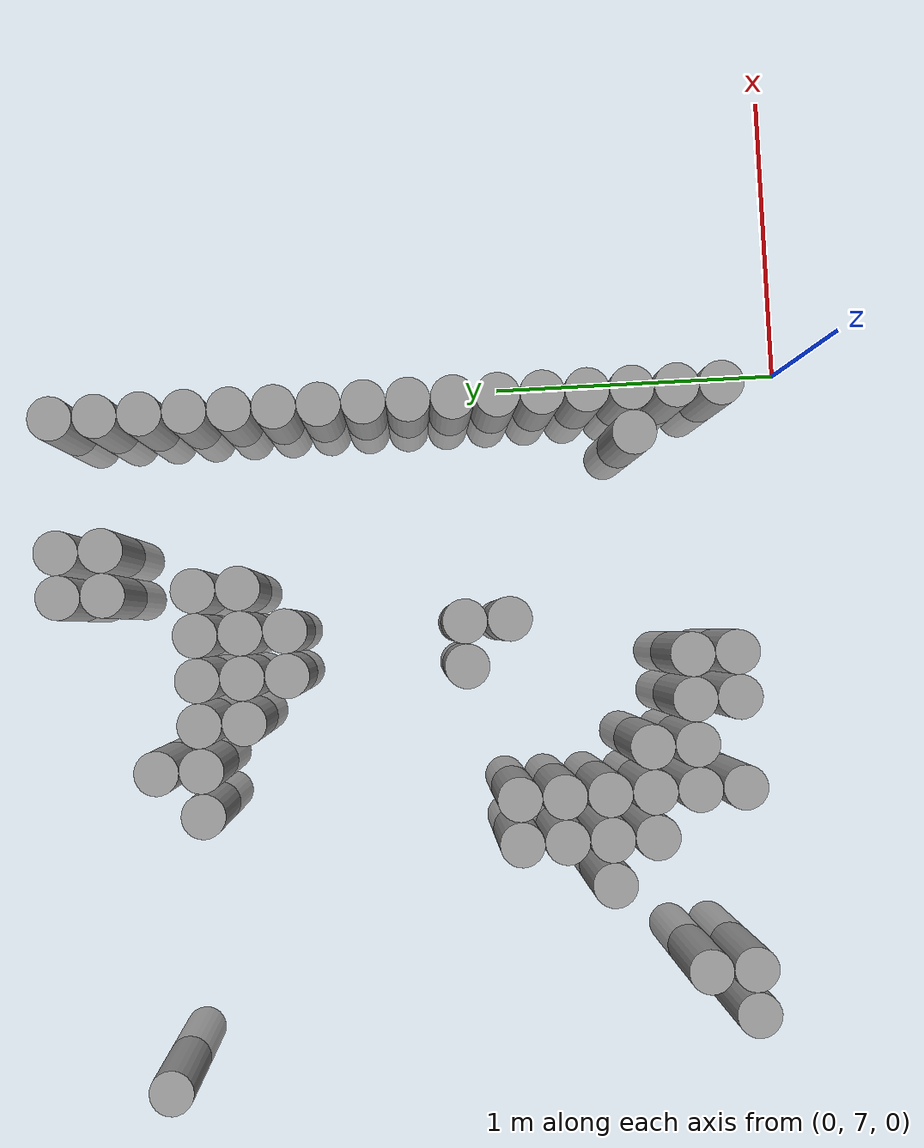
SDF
<sdf version="1.6">
 <world name="default">
  <model name="ground_plane">
   <static>1</static>
   <static>1</static>
   <link name="link">
    <collision name="collision">
     <geometry><plane><normal>0 0 1</normal><size>100 100</size></plane></geometry>
     <surface><friction><ode><mu>100</mu><mu2>50</mu2></ode></friction></surface>
    </collision>
    <visual name="visual">
     <cast_shadows>0</cast_shadows>
     <geometry><plane><normal>0 0 1</normal><size>100 100</size></plane></geometry>
     <material>
      <script><uri>file://media/materials/scripts/gazebo.material</uri><name>Gazebo/Grey</name></script>
     </material>
    </visual>
   </link>
  </model>
  <model name="unit_cylinder_172">
   <static>1</static>
   <pose>-2.325000 9.225000 0.000000 0.000000 0.000000 0.000000</pose>
   <link name="link">
    <inertial>
     <mass>1</mass>
     <inertia><ixx>0.145833</ixx><ixy>0</ixy><ixz>0</ixz><iyy>0.145833</iyy><iyz>0</iyz><izz>0.125</izz></inertia>
    </inertial>
    <collision name="collision">
     <geometry><cylinder><radius>0.075000</radius><length>1</length></cylinder></geometry>
    </collision>
    <visual name="visual">
     <geometry><cylinder><radius>0.075000</radius><length>1</length></cylinder></geometry>
     <material>
      <script><name>Gazebo/Grey</name><uri>file://media/materials/scripts/gazebo.material</uri></script>
     </material>
    </visual>
   </link>
  </model>
  <model name="unit_cylinder_177">
   <static>1</static>
   <pose>-2.175000 7.275000 0.000000 0.000000 0.000000 0.000000</pose>
   <link name="link">
    <inertial>
     <mass>1</mass>
     <inertia><ixx>0.145833</ixx><ixy>0</ixy><ixz>0</ixz><iyy>0.145833</iyy><iyz>0</iyz><izz>0.125</izz></inertia>
    </inertial>
    <collision name="collision">
     <geometry><cylinder><radius>0.075000</radius><length>1</length></cylinder></geometry>
    </collision>
    <visual name="visual">
     <geometry><cylinder><radius>0.075000</radius><length>1</length></cylinder></geometry>
     <material>
      <script><name>Gazebo/Grey</name><uri>file://media/materials/scripts/gazebo.material</uri></script>
     </material>
    </visual>
   </link>
  </model>
  <model name="unit_cylinder_181">
   <static>1</static>
   <pose>-2.025000 7.275000 0.000000 0.000000 0.000000 0.000000</pose>
   <link name="link">
    <inertial>
     <mass>1</mass>
     <inertia><ixx>0.145833</ixx><ixy>0</ixy><ixz>0</ixz><iyy>0.145833</iyy><iyz>0</iyz><izz>0.125</izz></inertia>
    </inertial>
    <collision name="collision">
     <geometry><cylinder><radius>0.075000</radius><length>1</length></cylinder></geometry>
    </collision>
    <visual name="visual">
     <geometry><cylinder><radius>0.075000</radius><length>1</length></cylinder></geometry>
     <material>
      <script><name>Gazebo/Grey</name><uri>file://media/materials/scripts/gazebo.material</uri></script>
     </material>
    </visual>
   </link>
  </model>
  <model name="unit_cylinder_182">
   <static>1</static>
   <pose>-2.025000 7.425000 0.000000 0.000000 0.000000 0.000000</pose>
   <link name="link">
    <inertial>
     <mass>1</mass>
     <inertia><ixx>0.145833</ixx><ixy>0</ixy><ixz>0</ixz><iyy>0.145833</iyy><iyz>0</iyz><izz>0.125</izz></inertia>
    </inertial>
    <collision name="collision">
     <geometry><cylinder><radius>0.075000</radius><length>1</length></cylinder></geometry>
    </collision>
    <visual name="visual">
     <geometry><cylinder><radius>0.075000</radius><length>1</length></cylinder></geometry>
     <material>
      <script><name>Gazebo/Grey</name><uri>file://media/materials/scripts/gazebo.material</uri></script>
     </material>
    </visual>
   </link>
  </model>
  <model name="unit_cylinder_190">
   <static>1</static>
   <pose>-1.725000 7.725000 0.000000 0.000000 0.000000 0.000000</pose>
   <link name="link">
    <inertial>
     <mass>1</mass>
     <inertia><ixx>0.145833</ixx><ixy>0</ixy><ixz>0</ixz><iyy>0.145833</iyy><iyz>0</iyz><izz>0.125</izz></inertia>
    </inertial>
    <collision name="collision">
     <geometry><cylinder><radius>0.075000</radius><length>1</length></cylinder></geometry>
    </collision>
    <visual name="visual">
     <geometry><cylinder><radius>0.075000</radius><length>1</length></cylinder></geometry>
     <material>
      <script><name>Gazebo/Grey</name><uri>file://media/materials/scripts/gazebo.material</uri></script>
     </material>
    </visual>
   </link>
  </model>
  <model name="unit_cylinder_195">
   <static>1</static>
   <pose>-1.575000 7.575000 0.000000 0.000000 0.000000 0.000000</pose>
   <link name="link">
    <inertial>
     <mass>1</mass>
     <inertia><ixx>0.145833</ixx><ixy>0</ixy><ixz>0</ixz><iyy>0.145833</iyy><iyz>0</iyz><izz>0.125</izz></inertia>
    </inertial>
    <collision name="collision">
     <geometry><cylinder><radius>0.075000</radius><length>1</length></cylinder></geometry>
    </collision>
    <visual name="visual">
     <geometry><cylinder><radius>0.075000</radius><length>1</length></cylinder></geometry>
     <material>
      <script><name>Gazebo/Grey</name><uri>file://media/materials/scripts/gazebo.material</uri></script>
     </material>
    </visual>
   </link>
  </model>
  <model name="unit_cylinder_196">
   <static>1</static>
   <pose>-1.575000 7.725000 0.000000 0.000000 0.000000 0.000000</pose>
   <link name="link">
    <inertial>
     <mass>1</mass>
     <inertia><ixx>0.145833</ixx><ixy>0</ixy><ixz>0</ixz><iyy>0.145833</iyy><iyz>0</iyz><izz>0.125</izz></inertia>
    </inertial>
    <collision name="collision">
     <geometry><cylinder><radius>0.075000</radius><length>1</length></cylinder></geometry>
    </collision>
    <visual name="visual">
     <geometry><cylinder><radius>0.075000</radius><length>1</length></cylinder></geometry>
     <material>
      <script><name>Gazebo/Grey</name><uri>file://media/materials/scripts/gazebo.material</uri></script>
     </material>
    </visual>
   </link>
  </model>
  <model name="unit_cylinder_197">
   <static>1</static>
   <pose>-1.575000 7.875000 0.000000 0.000000 0.000000 0.000000</pose>
   <link name="link">
    <inertial>
     <mass>1</mass>
     <inertia><ixx>0.145833</ixx><ixy>0</ixy><ixz>0</ixz><iyy>0.145833</iyy><iyz>0</iyz><izz>0.125</izz></inertia>
    </inertial>
    <collision name="collision">
     <geometry><cylinder><radius>0.075000</radius><length>1</length></cylinder></geometry>
    </collision>
    <visual name="visual">
     <geometry><cylinder><radius>0.075000</radius><length>1</length></cylinder></geometry>
     <material>
      <script><name>Gazebo/Grey</name><uri>file://media/materials/scripts/gazebo.material</uri></script>
     </material>
    </visual>
   </link>
  </model>
  <model name="unit_cylinder_198">
   <static>1</static>
   <pose>-1.575000 8.025000 0.000000 0.000000 0.000000 0.000000</pose>
   <link name="link">
    <inertial>
     <mass>1</mass>
     <inertia><ixx>0.145833</ixx><ixy>0</ixy><ixz>0</ixz><iyy>0.145833</iyy><iyz>0</iyz><izz>0.125</izz></inertia>
    </inertial>
    <collision name="collision">
     <geometry><cylinder><radius>0.075000</radius><length>1</length></cylinder></geometry>
    </collision>
    <visual name="visual">
     <geometry><cylinder><radius>0.075000</radius><length>1</length></cylinder></geometry>
     <material>
      <script><name>Gazebo/Grey</name><uri>file://media/materials/scripts/gazebo.material</uri></script>
     </material>
    </visual>
   </link>
  </model>
  <model name="unit_cylinder_205">
   <static>1</static>
   <pose>-1.425000 7.275000 0.000000 0.000000 0.000000 0.000000</pose>
   <link name="link">
    <inertial>
     <mass>1</mass>
     <inertia><ixx>0.145833</ixx><ixy>0</ixy><ixz>0</ixz><iyy>0.145833</iyy><iyz>0</iyz><izz>0.125</izz></inertia>
    </inertial>
    <collision name="collision">
     <geometry><cylinder><radius>0.075000</radius><length>1</length></cylinder></geometry>
    </collision>
    <visual name="visual">
     <geometry><cylinder><radius>0.075000</radius><length>1</length></cylinder></geometry>
     <material>
      <script><name>Gazebo/Grey</name><uri>file://media/materials/scripts/gazebo.material</uri></script>
     </material>
    </visual>
   </link>
  </model>
  <model name="unit_cylinder_206">
   <static>1</static>
   <pose>-1.425000 7.425000 0.000000 0.000000 0.000000 0.000000</pose>
   <link name="link">
    <inertial>
     <mass>1</mass>
     <inertia><ixx>0.145833</ixx><ixy>0</ixy><ixz>0</ixz><iyy>0.145833</iyy><iyz>0</iyz><izz>0.125</izz></inertia>
    </inertial>
    <collision name="collision">
     <geometry><cylinder><radius>0.075000</radius><length>1</length></cylinder></geometry>
    </collision>
    <visual name="visual">
     <geometry><cylinder><radius>0.075000</radius><length>1</length></cylinder></geometry>
     <material>
      <script><name>Gazebo/Grey</name><uri>file://media/materials/scripts/gazebo.material</uri></script>
     </material>
    </visual>
   </link>
  </model>
  <model name="unit_cylinder_207">
   <static>1</static>
   <pose>-1.425000 7.575000 0.000000 0.000000 0.000000 0.000000</pose>
   <link name="link">
    <inertial>
     <mass>1</mass>
     <inertia><ixx>0.145833</ixx><ixy>0</ixy><ixz>0</ixz><iyy>0.145833</iyy><iyz>0</iyz><izz>0.125</izz></inertia>
    </inertial>
    <collision name="collision">
     <geometry><cylinder><radius>0.075000</radius><length>1</length></cylinder></geometry>
    </collision>
    <visual name="visual">
     <geometry><cylinder><radius>0.075000</radius><length>1</length></cylinder></geometry>
     <material>
      <script><name>Gazebo/Grey</name><uri>file://media/materials/scripts/gazebo.material</uri></script>
     </material>
    </visual>
   </link>
  </model>
  <model name="unit_cylinder_208">
   <static>1</static>
   <pose>-1.425000 7.725000 0.000000 0.000000 0.000000 0.000000</pose>
   <link name="link">
    <inertial>
     <mass>1</mass>
     <inertia><ixx>0.145833</ixx><ixy>0</ixy><ixz>0</ixz><iyy>0.145833</iyy><iyz>0</iyz><izz>0.125</izz></inertia>
    </inertial>
    <collision name="collision">
     <geometry><cylinder><radius>0.075000</radius><length>1</length></cylinder></geometry>
    </collision>
    <visual name="visual">
     <geometry><cylinder><radius>0.075000</radius><length>1</length></cylinder></geometry>
     <material>
      <script><name>Gazebo/Grey</name><uri>file://media/materials/scripts/gazebo.material</uri></script>
     </material>
    </visual>
   </link>
  </model>
  <model name="unit_cylinder_209">
   <static>1</static>
   <pose>-1.425000 7.875000 0.000000 0.000000 0.000000 0.000000</pose>
   <link name="link">
    <inertial>
     <mass>1</mass>
     <inertia><ixx>0.145833</ixx><ixy>0</ixy><ixz>0</ixz><iyy>0.145833</iyy><iyz>0</iyz><izz>0.125</izz></inertia>
    </inertial>
    <collision name="collision">
     <geometry><cylinder><radius>0.075000</radius><length>1</length></cylinder></geometry>
    </collision>
    <visual name="visual">
     <geometry><cylinder><radius>0.075000</radius><length>1</length></cylinder></geometry>
     <material>
      <script><name>Gazebo/Grey</name><uri>file://media/materials/scripts/gazebo.material</uri></script>
     </material>
    </visual>
   </link>
  </model>
  <model name="unit_cylinder_210">
   <static>1</static>
   <pose>-1.425000 8.025000 0.000000 0.000000 0.000000 0.000000</pose>
   <link name="link">
    <inertial>
     <mass>1</mass>
     <inertia><ixx>0.145833</ixx><ixy>0</ixy><ixz>0</ixz><iyy>0.145833</iyy><iyz>0</iyz><izz>0.125</izz></inertia>
    </inertial>
    <collision name="collision">
     <geometry><cylinder><radius>0.075000</radius><length>1</length></cylinder></geometry>
    </collision>
    <visual name="visual">
     <geometry><cylinder><radius>0.075000</radius><length>1</length></cylinder></geometry>
     <material>
      <script><name>Gazebo/Grey</name><uri>file://media/materials/scripts/gazebo.material</uri></script>
     </material>
    </visual>
   </link>
  </model>
  <model name="unit_cylinder_211">
   <static>1</static>
   <pose>-1.425000 9.075000 0.000000 0.000000 0.000000 0.000000</pose>
   <link name="link">
    <inertial>
     <mass>1</mass>
     <inertia><ixx>0.145833</ixx><ixy>0</ixy><ixz>0</ixz><iyy>0.145833</iyy><iyz>0</iyz><izz>0.125</izz></inertia>
    </inertial>
    <collision name="collision">
     <geometry><cylinder><radius>0.075000</radius><length>1</length></cylinder></geometry>
    </collision>
    <visual name="visual">
     <geometry><cylinder><radius>0.075000</radius><length>1</length></cylinder></geometry>
     <material>
      <script><name>Gazebo/Grey</name><uri>file://media/materials/scripts/gazebo.material</uri></script>
     </material>
    </visual>
   </link>
  </model>
  <model name="unit_cylinder_215">
   <static>1</static>
   <pose>-1.275000 7.425000 0.000000 0.000000 0.000000 0.000000</pose>
   <link name="link">
    <inertial>
     <mass>1</mass>
     <inertia><ixx>0.145833</ixx><ixy>0</ixy><ixz>0</ixz><iyy>0.145833</iyy><iyz>0</iyz><izz>0.125</izz></inertia>
    </inertial>
    <collision name="collision">
     <geometry><cylinder><radius>0.075000</radius><length>1</length></cylinder></geometry>
    </collision>
    <visual name="visual">
     <geometry><cylinder><radius>0.075000</radius><length>1</length></cylinder></geometry>
     <material>
      <script><name>Gazebo/Grey</name><uri>file://media/materials/scripts/gazebo.material</uri></script>
     </material>
    </visual>
   </link>
  </model>
  <model name="unit_cylinder_216">
   <static>1</static>
   <pose>-1.275000 7.575000 0.000000 0.000000 0.000000 0.000000</pose>
   <link name="link">
    <inertial>
     <mass>1</mass>
     <inertia><ixx>0.145833</ixx><ixy>0</ixy><ixz>0</ixz><iyy>0.145833</iyy><iyz>0</iyz><izz>0.125</izz></inertia>
    </inertial>
    <collision name="collision">
     <geometry><cylinder><radius>0.075000</radius><length>1</length></cylinder></geometry>
    </collision>
    <visual name="visual">
     <geometry><cylinder><radius>0.075000</radius><length>1</length></cylinder></geometry>
     <material>
      <script><name>Gazebo/Grey</name><uri>file://media/materials/scripts/gazebo.material</uri></script>
     </material>
    </visual>
   </link>
  </model>
  <model name="unit_cylinder_217">
   <static>1</static>
   <pose>-1.275000 9.075000 0.000000 0.000000 0.000000 0.000000</pose>
   <link name="link">
    <inertial>
     <mass>1</mass>
     <inertia><ixx>0.145833</ixx><ixy>0</ixy><ixz>0</ixz><iyy>0.145833</iyy><iyz>0</iyz><izz>0.125</izz></inertia>
    </inertial>
    <collision name="collision">
     <geometry><cylinder><radius>0.075000</radius><length>1</length></cylinder></geometry>
    </collision>
    <visual name="visual">
     <geometry><cylinder><radius>0.075000</radius><length>1</length></cylinder></geometry>
     <material>
      <script><name>Gazebo/Grey</name><uri>file://media/materials/scripts/gazebo.material</uri></script>
     </material>
    </visual>
   </link>
  </model>
  <model name="unit_cylinder_218">
   <static>1</static>
   <pose>-1.275000 9.225000 0.000000 0.000000 0.000000 0.000000</pose>
   <link name="link">
    <inertial>
     <mass>1</mass>
     <inertia><ixx>0.145833</ixx><ixy>0</ixy><ixz>0</ixz><iyy>0.145833</iyy><iyz>0</iyz><izz>0.125</izz></inertia>
    </inertial>
    <collision name="collision">
     <geometry><cylinder><radius>0.075000</radius><length>1</length></cylinder></geometry>
    </collision>
    <visual name="visual">
     <geometry><cylinder><radius>0.075000</radius><length>1</length></cylinder></geometry>
     <material>
      <script><name>Gazebo/Grey</name><uri>file://media/materials/scripts/gazebo.material</uri></script>
     </material>
    </visual>
   </link>
  </model>
  <model name="unit_cylinder_224">
   <static>1</static>
   <pose>-1.125000 7.275000 0.000000 0.000000 0.000000 0.000000</pose>
   <link name="link">
    <inertial>
     <mass>1</mass>
     <inertia><ixx>0.145833</ixx><ixy>0</ixy><ixz>0</ixz><iyy>0.145833</iyy><iyz>0</iyz><izz>0.125</izz></inertia>
    </inertial>
    <collision name="collision">
     <geometry><cylinder><radius>0.075000</radius><length>1</length></cylinder></geometry>
    </collision>
    <visual name="visual">
     <geometry><cylinder><radius>0.075000</radius><length>1</length></cylinder></geometry>
     <material>
      <script><name>Gazebo/Grey</name><uri>file://media/materials/scripts/gazebo.material</uri></script>
     </material>
    </visual>
   </link>
  </model>
  <model name="unit_cylinder_225">
   <static>1</static>
   <pose>-1.125000 7.425000 0.000000 0.000000 0.000000 0.000000</pose>
   <link name="link">
    <inertial>
     <mass>1</mass>
     <inertia><ixx>0.145833</ixx><ixy>0</ixy><ixz>0</ixz><iyy>0.145833</iyy><iyz>0</iyz><izz>0.125</izz></inertia>
    </inertial>
    <collision name="collision">
     <geometry><cylinder><radius>0.075000</radius><length>1</length></cylinder></geometry>
    </collision>
    <visual name="visual">
     <geometry><cylinder><radius>0.075000</radius><length>1</length></cylinder></geometry>
     <material>
      <script><name>Gazebo/Grey</name><uri>file://media/materials/scripts/gazebo.material</uri></script>
     </material>
    </visual>
   </link>
  </model>
  <model name="unit_cylinder_226">
   <static>1</static>
   <pose>-1.125000 8.925000 0.000000 0.000000 0.000000 0.000000</pose>
   <link name="link">
    <inertial>
     <mass>1</mass>
     <inertia><ixx>0.145833</ixx><ixy>0</ixy><ixz>0</ixz><iyy>0.145833</iyy><iyz>0</iyz><izz>0.125</izz></inertia>
    </inertial>
    <collision name="collision">
     <geometry><cylinder><radius>0.075000</radius><length>1</length></cylinder></geometry>
    </collision>
    <visual name="visual">
     <geometry><cylinder><radius>0.075000</radius><length>1</length></cylinder></geometry>
     <material>
      <script><name>Gazebo/Grey</name><uri>file://media/materials/scripts/gazebo.material</uri></script>
     </material>
    </visual>
   </link>
  </model>
  <model name="unit_cylinder_227">
   <static>1</static>
   <pose>-1.125000 9.075000 0.000000 0.000000 0.000000 0.000000</pose>
   <link name="link">
    <inertial>
     <mass>1</mass>
     <inertia><ixx>0.145833</ixx><ixy>0</ixy><ixz>0</ixz><iyy>0.145833</iyy><iyz>0</iyz><izz>0.125</izz></inertia>
    </inertial>
    <collision name="collision">
     <geometry><cylinder><radius>0.075000</radius><length>1</length></cylinder></geometry>
    </collision>
    <visual name="visual">
     <geometry><cylinder><radius>0.075000</radius><length>1</length></cylinder></geometry>
     <material>
      <script><name>Gazebo/Grey</name><uri>file://media/materials/scripts/gazebo.material</uri></script>
     </material>
    </visual>
   </link>
  </model>
  <model name="unit_cylinder_231">
   <static>1</static>
   <pose>-0.975000 7.275000 0.000000 0.000000 0.000000 0.000000</pose>
   <link name="link">
    <inertial>
     <mass>1</mass>
     <inertia><ixx>0.145833</ixx><ixy>0</ixy><ixz>0</ixz><iyy>0.145833</iyy><iyz>0</iyz><izz>0.125</izz></inertia>
    </inertial>
    <collision name="collision">
     <geometry><cylinder><radius>0.075000</radius><length>1</length></cylinder></geometry>
    </collision>
    <visual name="visual">
     <geometry><cylinder><radius>0.075000</radius><length>1</length></cylinder></geometry>
     <material>
      <script><name>Gazebo/Grey</name><uri>file://media/materials/scripts/gazebo.material</uri></script>
     </material>
    </visual>
   </link>
  </model>
  <model name="unit_cylinder_232">
   <static>1</static>
   <pose>-0.975000 7.425000 0.000000 0.000000 0.000000 0.000000</pose>
   <link name="link">
    <inertial>
     <mass>1</mass>
     <inertia><ixx>0.145833</ixx><ixy>0</ixy><ixz>0</ixz><iyy>0.145833</iyy><iyz>0</iyz><izz>0.125</izz></inertia>
    </inertial>
    <collision name="collision">
     <geometry><cylinder><radius>0.075000</radius><length>1</length></cylinder></geometry>
    </collision>
    <visual name="visual">
     <geometry><cylinder><radius>0.075000</radius><length>1</length></cylinder></geometry>
     <material>
      <script><name>Gazebo/Grey</name><uri>file://media/materials/scripts/gazebo.material</uri></script>
     </material>
    </visual>
   </link>
  </model>
  <model name="unit_cylinder_233">
   <static>1</static>
   <pose>-0.975000 8.175000 0.000000 0.000000 0.000000 0.000000</pose>
   <link name="link">
    <inertial>
     <mass>1</mass>
     <inertia><ixx>0.145833</ixx><ixy>0</ixy><ixz>0</ixz><iyy>0.145833</iyy><iyz>0</iyz><izz>0.125</izz></inertia>
    </inertial>
    <collision name="collision">
     <geometry><cylinder><radius>0.075000</radius><length>1</length></cylinder></geometry>
    </collision>
    <visual name="visual">
     <geometry><cylinder><radius>0.075000</radius><length>1</length></cylinder></geometry>
     <material>
      <script><name>Gazebo/Grey</name><uri>file://media/materials/scripts/gazebo.material</uri></script>
     </material>
    </visual>
   </link>
  </model>
  <model name="unit_cylinder_234">
   <static>1</static>
   <pose>-0.975000 8.775000 0.000000 0.000000 0.000000 0.000000</pose>
   <link name="link">
    <inertial>
     <mass>1</mass>
     <inertia><ixx>0.145833</ixx><ixy>0</ixy><ixz>0</ixz><iyy>0.145833</iyy><iyz>0</iyz><izz>0.125</izz></inertia>
    </inertial>
    <collision name="collision">
     <geometry><cylinder><radius>0.075000</radius><length>1</length></cylinder></geometry>
    </collision>
    <visual name="visual">
     <geometry><cylinder><radius>0.075000</radius><length>1</length></cylinder></geometry>
     <material>
      <script><name>Gazebo/Grey</name><uri>file://media/materials/scripts/gazebo.material</uri></script>
     </material>
    </visual>
   </link>
  </model>
  <model name="unit_cylinder_235">
   <static>1</static>
   <pose>-0.975000 8.925000 0.000000 0.000000 0.000000 0.000000</pose>
   <link name="link">
    <inertial>
     <mass>1</mass>
     <inertia><ixx>0.145833</ixx><ixy>0</ixy><ixz>0</ixz><iyy>0.145833</iyy><iyz>0</iyz><izz>0.125</izz></inertia>
    </inertial>
    <collision name="collision">
     <geometry><cylinder><radius>0.075000</radius><length>1</length></cylinder></geometry>
    </collision>
    <visual name="visual">
     <geometry><cylinder><radius>0.075000</radius><length>1</length></cylinder></geometry>
     <material>
      <script><name>Gazebo/Grey</name><uri>file://media/materials/scripts/gazebo.material</uri></script>
     </material>
    </visual>
   </link>
  </model>
  <model name="unit_cylinder_236">
   <static>1</static>
   <pose>-0.975000 9.075000 0.000000 0.000000 0.000000 0.000000</pose>
   <link name="link">
    <inertial>
     <mass>1</mass>
     <inertia><ixx>0.145833</ixx><ixy>0</ixy><ixz>0</ixz><iyy>0.145833</iyy><iyz>0</iyz><izz>0.125</izz></inertia>
    </inertial>
    <collision name="collision">
     <geometry><cylinder><radius>0.075000</radius><length>1</length></cylinder></geometry>
    </collision>
    <visual name="visual">
     <geometry><cylinder><radius>0.075000</radius><length>1</length></cylinder></geometry>
     <material>
      <script><name>Gazebo/Grey</name><uri>file://media/materials/scripts/gazebo.material</uri></script>
     </material>
    </visual>
   </link>
  </model>
  <model name="unit_cylinder_239">
   <static>1</static>
   <pose>-0.825000 8.025000 0.000000 0.000000 0.000000 0.000000</pose>
   <link name="link">
    <inertial>
     <mass>1</mass>
     <inertia><ixx>0.145833</ixx><ixy>0</ixy><ixz>0</ixz><iyy>0.145833</iyy><iyz>0</iyz><izz>0.125</izz></inertia>
    </inertial>
    <collision name="collision">
     <geometry><cylinder><radius>0.075000</radius><length>1</length></cylinder></geometry>
    </collision>
    <visual name="visual">
     <geometry><cylinder><radius>0.075000</radius><length>1</length></cylinder></geometry>
     <material>
      <script><name>Gazebo/Grey</name><uri>file://media/materials/scripts/gazebo.material</uri></script>
     </material>
    </visual>
   </link>
  </model>
  <model name="unit_cylinder_240">
   <static>1</static>
   <pose>-0.825000 8.175000 0.000000 0.000000 0.000000 0.000000</pose>
   <link name="link">
    <inertial>
     <mass>1</mass>
     <inertia><ixx>0.145833</ixx><ixy>0</ixy><ixz>0</ixz><iyy>0.145833</iyy><iyz>0</iyz><izz>0.125</izz></inertia>
    </inertial>
    <collision name="collision">
     <geometry><cylinder><radius>0.075000</radius><length>1</length></cylinder></geometry>
    </collision>
    <visual name="visual">
     <geometry><cylinder><radius>0.075000</radius><length>1</length></cylinder></geometry>
     <material>
      <script><name>Gazebo/Grey</name><uri>file://media/materials/scripts/gazebo.material</uri></script>
     </material>
    </visual>
   </link>
  </model>
  <model name="unit_cylinder_241">
   <static>1</static>
   <pose>-0.825000 8.775000 0.000000 0.000000 0.000000 0.000000</pose>
   <link name="link">
    <inertial>
     <mass>1</mass>
     <inertia><ixx>0.145833</ixx><ixy>0</ixy><ixz>0</ixz><iyy>0.145833</iyy><iyz>0</iyz><izz>0.125</izz></inertia>
    </inertial>
    <collision name="collision">
     <geometry><cylinder><radius>0.075000</radius><length>1</length></cylinder></geometry>
    </collision>
    <visual name="visual">
     <geometry><cylinder><radius>0.075000</radius><length>1</length></cylinder></geometry>
     <material>
      <script><name>Gazebo/Grey</name><uri>file://media/materials/scripts/gazebo.material</uri></script>
     </material>
    </visual>
   </link>
  </model>
  <model name="unit_cylinder_242">
   <static>1</static>
   <pose>-0.825000 8.925000 0.000000 0.000000 0.000000 0.000000</pose>
   <link name="link">
    <inertial>
     <mass>1</mass>
     <inertia><ixx>0.145833</ixx><ixy>0</ixy><ixz>0</ixz><iyy>0.145833</iyy><iyz>0</iyz><izz>0.125</izz></inertia>
    </inertial>
    <collision name="collision">
     <geometry><cylinder><radius>0.075000</radius><length>1</length></cylinder></geometry>
    </collision>
    <visual name="visual">
     <geometry><cylinder><radius>0.075000</radius><length>1</length></cylinder></geometry>
     <material>
      <script><name>Gazebo/Grey</name><uri>file://media/materials/scripts/gazebo.material</uri></script>
     </material>
    </visual>
   </link>
  </model>
  <model name="unit_cylinder_243">
   <static>1</static>
   <pose>-0.825000 9.075000 0.000000 0.000000 0.000000 0.000000</pose>
   <link name="link">
    <inertial>
     <mass>1</mass>
     <inertia><ixx>0.145833</ixx><ixy>0</ixy><ixz>0</ixz><iyy>0.145833</iyy><iyz>0</iyz><izz>0.125</izz></inertia>
    </inertial>
    <collision name="collision">
     <geometry><cylinder><radius>0.075000</radius><length>1</length></cylinder></geometry>
    </collision>
    <visual name="visual">
     <geometry><cylinder><radius>0.075000</radius><length>1</length></cylinder></geometry>
     <material>
      <script><name>Gazebo/Grey</name><uri>file://media/materials/scripts/gazebo.material</uri></script>
     </material>
    </visual>
   </link>
  </model>
  <model name="unit_cylinder_246">
   <static>1</static>
   <pose>-0.675000 8.925000 0.000000 0.000000 0.000000 0.000000</pose>
   <link name="link">
    <inertial>
     <mass>1</mass>
     <inertia><ixx>0.145833</ixx><ixy>0</ixy><ixz>0</ixz><iyy>0.145833</iyy><iyz>0</iyz><izz>0.125</izz></inertia>
    </inertial>
    <collision name="collision">
     <geometry><cylinder><radius>0.075000</radius><length>1</length></cylinder></geometry>
    </collision>
    <visual name="visual">
     <geometry><cylinder><radius>0.075000</radius><length>1</length></cylinder></geometry>
     <material>
      <script><name>Gazebo/Grey</name><uri>file://media/materials/scripts/gazebo.material</uri></script>
     </material>
    </visual>
   </link>
  </model>
  <model name="unit_cylinder_247">
   <static>1</static>
   <pose>-0.675000 9.075000 0.000000 0.000000 0.000000 0.000000</pose>
   <link name="link">
    <inertial>
     <mass>1</mass>
     <inertia><ixx>0.145833</ixx><ixy>0</ixy><ixz>0</ixz><iyy>0.145833</iyy><iyz>0</iyz><izz>0.125</izz></inertia>
    </inertial>
    <collision name="collision">
     <geometry><cylinder><radius>0.075000</radius><length>1</length></cylinder></geometry>
    </collision>
    <visual name="visual">
     <geometry><cylinder><radius>0.075000</radius><length>1</length></cylinder></geometry>
     <material>
      <script><name>Gazebo/Grey</name><uri>file://media/materials/scripts/gazebo.material</uri></script>
     </material>
    </visual>
   </link>
  </model>
  <model name="unit_cylinder_248">
   <static>1</static>
   <pose>-0.675000 9.375000 0.000000 0.000000 0.000000 0.000000</pose>
   <link name="link">
    <inertial>
     <mass>1</mass>
     <inertia><ixx>0.145833</ixx><ixy>0</ixy><ixz>0</ixz><iyy>0.145833</iyy><iyz>0</iyz><izz>0.125</izz></inertia>
    </inertial>
    <collision name="collision">
     <geometry><cylinder><radius>0.075000</radius><length>1</length></cylinder></geometry>
    </collision>
    <visual name="visual">
     <geometry><cylinder><radius>0.075000</radius><length>1</length></cylinder></geometry>
     <material>
      <script><name>Gazebo/Grey</name><uri>file://media/materials/scripts/gazebo.material</uri></script>
     </material>
    </visual>
   </link>
  </model>
  <model name="unit_cylinder_249">
   <static>1</static>
   <pose>-0.675000 9.525000 0.000000 0.000000 0.000000 0.000000</pose>
   <link name="link">
    <inertial>
     <mass>1</mass>
     <inertia><ixx>0.145833</ixx><ixy>0</ixy><ixz>0</ixz><iyy>0.145833</iyy><iyz>0</iyz><izz>0.125</izz></inertia>
    </inertial>
    <collision name="collision">
     <geometry><cylinder><radius>0.075000</radius><length>1</length></cylinder></geometry>
    </collision>
    <visual name="visual">
     <geometry><cylinder><radius>0.075000</radius><length>1</length></cylinder></geometry>
     <material>
      <script><name>Gazebo/Grey</name><uri>file://media/materials/scripts/gazebo.material</uri></script>
     </material>
    </visual>
   </link>
  </model>
  <model name="unit_cylinder_251">
   <static>1</static>
   <pose>-0.525000 9.375000 0.000000 0.000000 0.000000 0.000000</pose>
   <link name="link">
    <inertial>
     <mass>1</mass>
     <inertia><ixx>0.145833</ixx><ixy>0</ixy><ixz>0</ixz><iyy>0.145833</iyy><iyz>0</iyz><izz>0.125</izz></inertia>
    </inertial>
    <collision name="collision">
     <geometry><cylinder><radius>0.075000</radius><length>1</length></cylinder></geometry>
    </collision>
    <visual name="visual">
     <geometry><cylinder><radius>0.075000</radius><length>1</length></cylinder></geometry>
     <material>
      <script><name>Gazebo/Grey</name><uri>file://media/materials/scripts/gazebo.material</uri></script>
     </material>
    </visual>
   </link>
  </model>
  <model name="unit_cylinder_252">
   <static>1</static>
   <pose>-0.525000 9.525000 0.000000 0.000000 0.000000 0.000000</pose>
   <link name="link">
    <inertial>
     <mass>1</mass>
     <inertia><ixx>0.145833</ixx><ixy>0</ixy><ixz>0</ixz><iyy>0.145833</iyy><iyz>0</iyz><izz>0.125</izz></inertia>
    </inertial>
    <collision name="collision">
     <geometry><cylinder><radius>0.075000</radius><length>1</length></cylinder></geometry>
    </collision>
    <visual name="visual">
     <geometry><cylinder><radius>0.075000</radius><length>1</length></cylinder></geometry>
     <material>
      <script><name>Gazebo/Grey</name><uri>file://media/materials/scripts/gazebo.material</uri></script>
     </material>
    </visual>
   </link>
  </model>
  <model name="unit_cylinder_258">
   <static>1</static>
   <pose>-0.225000 7.575000 0.000000 0.000000 0.000000 0.000000</pose>
   <link name="link">
    <inertial>
     <mass>1</mass>
     <inertia><ixx>0.145833</ixx><ixy>0</ixy><ixz>0</ixz><iyy>0.145833</iyy><iyz>0</iyz><izz>0.125</izz></inertia>
    </inertial>
    <collision name="collision">
     <geometry><cylinder><radius>0.075000</radius><length>1</length></cylinder></geometry>
    </collision>
    <visual name="visual">
     <geometry><cylinder><radius>0.075000</radius><length>1</length></cylinder></geometry>
     <material>
      <script><name>Gazebo/Grey</name><uri>file://media/materials/scripts/gazebo.material</uri></script>
     </material>
    </visual>
   </link>
  </model>
  <model name="unit_cylinder_273">
   <static>1</static>
   <pose>-0.075000 7.275000 0.000000 0.000000 0.000000 0.000000</pose>
   <link name="link">
    <inertial>
     <mass>1</mass>
     <inertia><ixx>0.145833</ixx><ixy>0</ixy><ixz>0</ixz><iyy>0.145833</iyy><iyz>0</iyz><izz>0.125</izz></inertia>
    </inertial>
    <collision name="collision">
     <geometry><cylinder><radius>0.075000</radius><length>1</length></cylinder></geometry>
    </collision>
    <visual name="visual">
     <geometry><cylinder><radius>0.075000</radius><length>1</length></cylinder></geometry>
     <material>
      <script><name>Gazebo/Grey</name><uri>file://media/materials/scripts/gazebo.material</uri></script>
     </material>
    </visual>
   </link>
  </model>
  <model name="unit_cylinder_274">
   <static>1</static>
   <pose>-0.075000 7.425000 0.000000 0.000000 0.000000 0.000000</pose>
   <link name="link">
    <inertial>
     <mass>1</mass>
     <inertia><ixx>0.145833</ixx><ixy>0</ixy><ixz>0</ixz><iyy>0.145833</iyy><iyz>0</iyz><izz>0.125</izz></inertia>
    </inertial>
    <collision name="collision">
     <geometry><cylinder><radius>0.075000</radius><length>1</length></cylinder></geometry>
    </collision>
    <visual name="visual">
     <geometry><cylinder><radius>0.075000</radius><length>1</length></cylinder></geometry>
     <material>
      <script><name>Gazebo/Grey</name><uri>file://media/materials/scripts/gazebo.material</uri></script>
     </material>
    </visual>
   </link>
  </model>
  <model name="unit_cylinder_275">
   <static>1</static>
   <pose>-0.075000 7.575000 0.000000 0.000000 0.000000 0.000000</pose>
   <link name="link">
    <inertial>
     <mass>1</mass>
     <inertia><ixx>0.145833</ixx><ixy>0</ixy><ixz>0</ixz><iyy>0.145833</iyy><iyz>0</iyz><izz>0.125</izz></inertia>
    </inertial>
    <collision name="collision">
     <geometry><cylinder><radius>0.075000</radius><length>1</length></cylinder></geometry>
    </collision>
    <visual name="visual">
     <geometry><cylinder><radius>0.075000</radius><length>1</length></cylinder></geometry>
     <material>
      <script><name>Gazebo/Grey</name><uri>file://media/materials/scripts/gazebo.material</uri></script>
     </material>
    </visual>
   </link>
  </model>
  <model name="unit_cylinder_276">
   <static>1</static>
   <pose>-0.075000 7.725000 0.000000 0.000000 0.000000 0.000000</pose>
   <link name="link">
    <inertial>
     <mass>1</mass>
     <inertia><ixx>0.145833</ixx><ixy>0</ixy><ixz>0</ixz><iyy>0.145833</iyy><iyz>0</iyz><izz>0.125</izz></inertia>
    </inertial>
    <collision name="collision">
     <geometry><cylinder><radius>0.075000</radius><length>1</length></cylinder></geometry>
    </collision>
    <visual name="visual">
     <geometry><cylinder><radius>0.075000</radius><length>1</length></cylinder></geometry>
     <material>
      <script><name>Gazebo/Grey</name><uri>file://media/materials/scripts/gazebo.material</uri></script>
     </material>
    </visual>
   </link>
  </model>
  <model name="unit_cylinder_277">
   <static>1</static>
   <pose>-0.075000 7.875000 0.000000 0.000000 0.000000 0.000000</pose>
   <link name="link">
    <inertial>
     <mass>1</mass>
     <inertia><ixx>0.145833</ixx><ixy>0</ixy><ixz>0</ixz><iyy>0.145833</iyy><iyz>0</iyz><izz>0.125</izz></inertia>
    </inertial>
    <collision name="collision">
     <geometry><cylinder><radius>0.075000</radius><length>1</length></cylinder></geometry>
    </collision>
    <visual name="visual">
     <geometry><cylinder><radius>0.075000</radius><length>1</length></cylinder></geometry>
     <material>
      <script><name>Gazebo/Grey</name><uri>file://media/materials/scripts/gazebo.material</uri></script>
     </material>
    </visual>
   </link>
  </model>
  <model name="unit_cylinder_278">
   <static>1</static>
   <pose>-0.075000 8.025000 0.000000 0.000000 0.000000 0.000000</pose>
   <link name="link">
    <inertial>
     <mass>1</mass>
     <inertia><ixx>0.145833</ixx><ixy>0</ixy><ixz>0</ixz><iyy>0.145833</iyy><iyz>0</iyz><izz>0.125</izz></inertia>
    </inertial>
    <collision name="collision">
     <geometry><cylinder><radius>0.075000</radius><length>1</length></cylinder></geometry>
    </collision>
    <visual name="visual">
     <geometry><cylinder><radius>0.075000</radius><length>1</length></cylinder></geometry>
     <material>
      <script><name>Gazebo/Grey</name><uri>file://media/materials/scripts/gazebo.material</uri></script>
     </material>
    </visual>
   </link>
  </model>
  <model name="unit_cylinder_279">
   <static>1</static>
   <pose>-0.075000 8.175000 0.000000 0.000000 0.000000 0.000000</pose>
   <link name="link">
    <inertial>
     <mass>1</mass>
     <inertia><ixx>0.145833</ixx><ixy>0</ixy><ixz>0</ixz><iyy>0.145833</iyy><iyz>0</iyz><izz>0.125</izz></inertia>
    </inertial>
    <collision name="collision">
     <geometry><cylinder><radius>0.075000</radius><length>1</length></cylinder></geometry>
    </collision>
    <visual name="visual">
     <geometry><cylinder><radius>0.075000</radius><length>1</length></cylinder></geometry>
     <material>
      <script><name>Gazebo/Grey</name><uri>file://media/materials/scripts/gazebo.material</uri></script>
     </material>
    </visual>
   </link>
  </model>
  <model name="unit_cylinder_280">
   <static>1</static>
   <pose>-0.075000 8.325000 0.000000 0.000000 0.000000 0.000000</pose>
   <link name="link">
    <inertial>
     <mass>1</mass>
     <inertia><ixx>0.145833</ixx><ixy>0</ixy><ixz>0</ixz><iyy>0.145833</iyy><iyz>0</iyz><izz>0.125</izz></inertia>
    </inertial>
    <collision name="collision">
     <geometry><cylinder><radius>0.075000</radius><length>1</length></cylinder></geometry>
    </collision>
    <visual name="visual">
     <geometry><cylinder><radius>0.075000</radius><length>1</length></cylinder></geometry>
     <material>
      <script><name>Gazebo/Grey</name><uri>file://media/materials/scripts/gazebo.material</uri></script>
     </material>
    </visual>
   </link>
  </model>
  <model name="unit_cylinder_281">
   <static>1</static>
   <pose>-0.075000 8.475000 0.000000 0.000000 0.000000 0.000000</pose>
   <link name="link">
    <inertial>
     <mass>1</mass>
     <inertia><ixx>0.145833</ixx><ixy>0</ixy><ixz>0</ixz><iyy>0.145833</iyy><iyz>0</iyz><izz>0.125</izz></inertia>
    </inertial>
    <collision name="collision">
     <geometry><cylinder><radius>0.075000</radius><length>1</length></cylinder></geometry>
    </collision>
    <visual name="visual">
     <geometry><cylinder><radius>0.075000</radius><length>1</length></cylinder></geometry>
     <material>
      <script><name>Gazebo/Grey</name><uri>file://media/materials/scripts/gazebo.material</uri></script>
     </material>
    </visual>
   </link>
  </model>
  <model name="unit_cylinder_282">
   <static>1</static>
   <pose>-0.075000 8.625000 0.000000 0.000000 0.000000 0.000000</pose>
   <link name="link">
    <inertial>
     <mass>1</mass>
     <inertia><ixx>0.145833</ixx><ixy>0</ixy><ixz>0</ixz><iyy>0.145833</iyy><iyz>0</iyz><izz>0.125</izz></inertia>
    </inertial>
    <collision name="collision">
     <geometry><cylinder><radius>0.075000</radius><length>1</length></cylinder></geometry>
    </collision>
    <visual name="visual">
     <geometry><cylinder><radius>0.075000</radius><length>1</length></cylinder></geometry>
     <material>
      <script><name>Gazebo/Grey</name><uri>file://media/materials/scripts/gazebo.material</uri></script>
     </material>
    </visual>
   </link>
  </model>
  <model name="unit_cylinder_283">
   <static>1</static>
   <pose>-0.075000 8.775000 0.000000 0.000000 0.000000 0.000000</pose>
   <link name="link">
    <inertial>
     <mass>1</mass>
     <inertia><ixx>0.145833</ixx><ixy>0</ixy><ixz>0</ixz><iyy>0.145833</iyy><iyz>0</iyz><izz>0.125</izz></inertia>
    </inertial>
    <collision name="collision">
     <geometry><cylinder><radius>0.075000</radius><length>1</length></cylinder></geometry>
    </collision>
    <visual name="visual">
     <geometry><cylinder><radius>0.075000</radius><length>1</length></cylinder></geometry>
     <material>
      <script><name>Gazebo/Grey</name><uri>file://media/materials/scripts/gazebo.material</uri></script>
     </material>
    </visual>
   </link>
  </model>
  <model name="unit_cylinder_284">
   <static>1</static>
   <pose>-0.075000 8.925000 0.000000 0.000000 0.000000 0.000000</pose>
   <link name="link">
    <inertial>
     <mass>1</mass>
     <inertia><ixx>0.145833</ixx><ixy>0</ixy><ixz>0</ixz><iyy>0.145833</iyy><iyz>0</iyz><izz>0.125</izz></inertia>
    </inertial>
    <collision name="collision">
     <geometry><cylinder><radius>0.075000</radius><length>1</length></cylinder></geometry>
    </collision>
    <visual name="visual">
     <geometry><cylinder><radius>0.075000</radius><length>1</length></cylinder></geometry>
     <material>
      <script><name>Gazebo/Grey</name><uri>file://media/materials/scripts/gazebo.material</uri></script>
     </material>
    </visual>
   </link>
  </model>
  <model name="unit_cylinder_285">
   <static>1</static>
   <pose>-0.075000 9.075000 0.000000 0.000000 0.000000 0.000000</pose>
   <link name="link">
    <inertial>
     <mass>1</mass>
     <inertia><ixx>0.145833</ixx><ixy>0</ixy><ixz>0</ixz><iyy>0.145833</iyy><iyz>0</iyz><izz>0.125</izz></inertia>
    </inertial>
    <collision name="collision">
     <geometry><cylinder><radius>0.075000</radius><length>1</length></cylinder></geometry>
    </collision>
    <visual name="visual">
     <geometry><cylinder><radius>0.075000</radius><length>1</length></cylinder></geometry>
     <material>
      <script><name>Gazebo/Grey</name><uri>file://media/materials/scripts/gazebo.material</uri></script>
     </material>
    </visual>
   </link>
  </model>
  <model name="unit_cylinder_286">
   <static>1</static>
   <pose>-0.075000 9.225000 0.000000 0.000000 0.000000 0.000000</pose>
   <link name="link">
    <inertial>
     <mass>1</mass>
     <inertia><ixx>0.145833</ixx><ixy>0</ixy><ixz>0</ixz><iyy>0.145833</iyy><iyz>0</iyz><izz>0.125</izz></inertia>
    </inertial>
    <collision name="collision">
     <geometry><cylinder><radius>0.075000</radius><length>1</length></cylinder></geometry>
    </collision>
    <visual name="visual">
     <geometry><cylinder><radius>0.075000</radius><length>1</length></cylinder></geometry>
     <material>
      <script><name>Gazebo/Grey</name><uri>file://media/materials/scripts/gazebo.material</uri></script>
     </material>
    </visual>
   </link>
  </model>
  <model name="unit_cylinder_287">
   <static>1</static>
   <pose>-0.075000 9.375000 0.000000 0.000000 0.000000 0.000000</pose>
   <link name="link">
    <inertial>
     <mass>1</mass>
     <inertia><ixx>0.145833</ixx><ixy>0</ixy><ixz>0</ixz><iyy>0.145833</iyy><iyz>0</iyz><izz>0.125</izz></inertia>
    </inertial>
    <collision name="collision">
     <geometry><cylinder><radius>0.075000</radius><length>1</length></cylinder></geometry>
    </collision>
    <visual name="visual">
     <geometry><cylinder><radius>0.075000</radius><length>1</length></cylinder></geometry>
     <material>
      <script><name>Gazebo/Grey</name><uri>file://media/materials/scripts/gazebo.material</uri></script>
     </material>
    </visual>
   </link>
  </model>
  <model name="unit_cylinder_288">
   <static>1</static>
   <pose>-0.075000 9.525000 0.000000 0.000000 0.000000 0.000000</pose>
   <link name="link">
    <inertial>
     <mass>1</mass>
     <inertia><ixx>0.145833</ixx><ixy>0</ixy><ixz>0</ixz><iyy>0.145833</iyy><iyz>0</iyz><izz>0.125</izz></inertia>
    </inertial>
    <collision name="collision">
     <geometry><cylinder><radius>0.075000</radius><length>1</length></cylinder></geometry>
    </collision>
    <visual name="visual">
     <geometry><cylinder><radius>0.075000</radius><length>1</length></cylinder></geometry>
     <material>
      <script><name>Gazebo/Grey</name><uri>file://media/materials/scripts/gazebo.material</uri></script>
     </material>
    </visual>
   </link>
  </model>
 </world>
</sdf>
